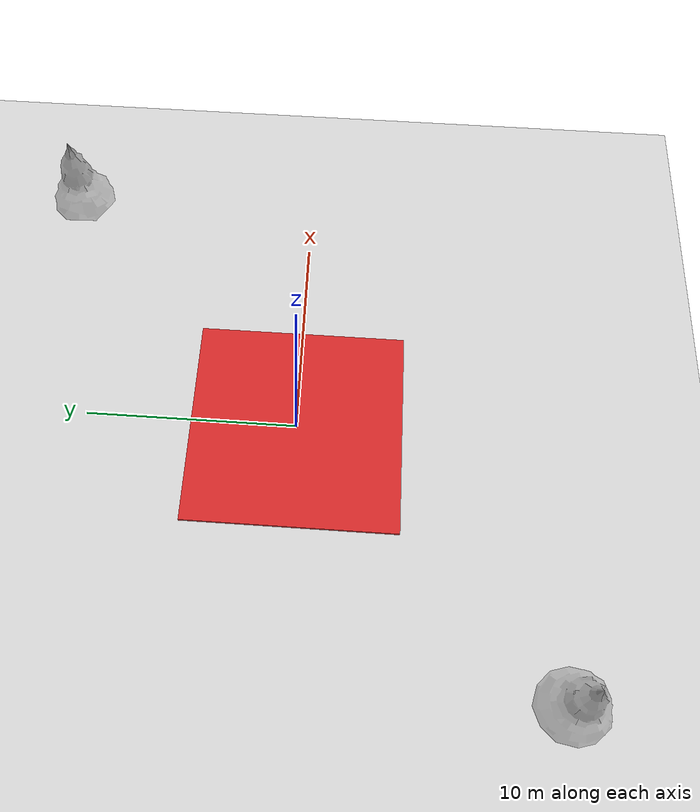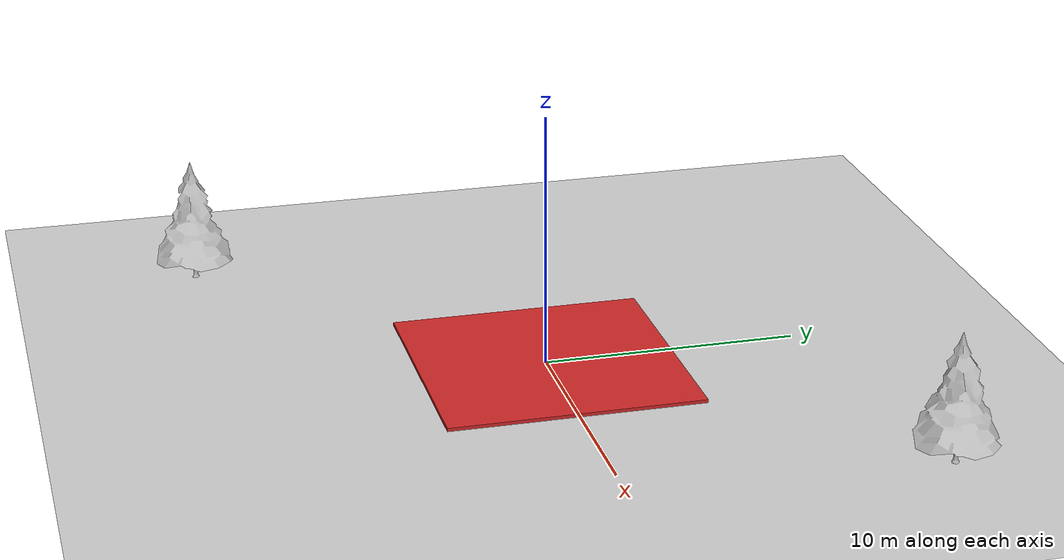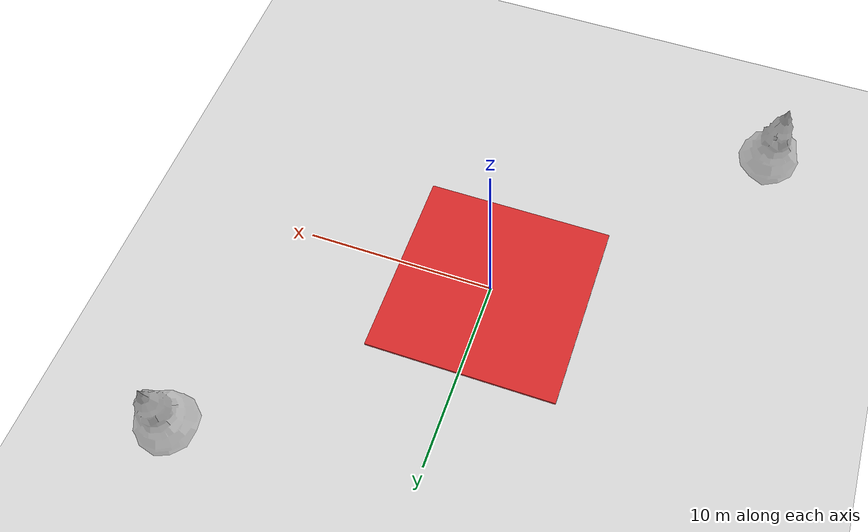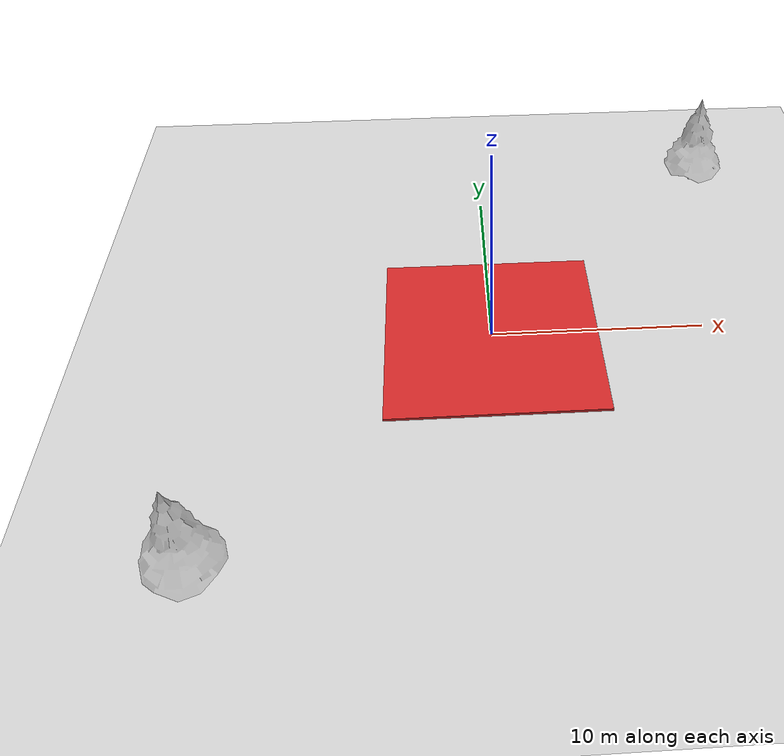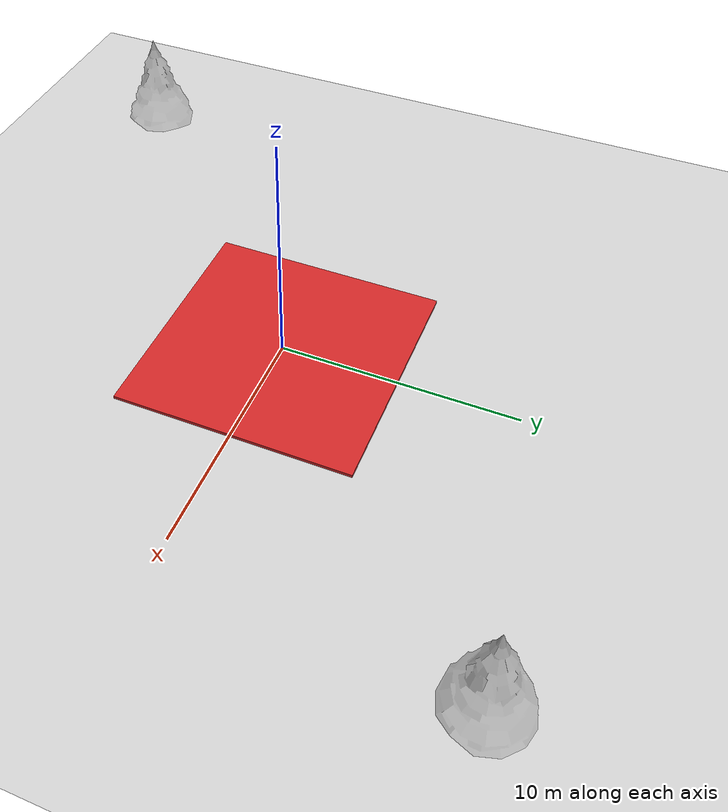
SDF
<?xml version="1.0" ?>
<sdf version="1.5">
	<world name="default">
		<!-- A global light source -->
		<include>
			<uri>model://sun</uri>
		</include>
		<!-- A ground plane -->
		<include>
			<uri>model://ground_plane</uri>
		</include>

		<include>
			<uri>model://pine_tree</uri>
			<static>false</static>
			<pose>12 12 0 0 0 0</pose>
		</include>

		<include>
			<uri>model://pine_tree</uri>
			<static>false</static>
			<pose>-12 -12 0 0 0 0</pose>
		</include>

		<include>
			<uri>model://dancefloor</uri>
			<static>false</static>
			<pose>0 0 0 0 0 0</pose>
		</include>

	</world>
</sdf>

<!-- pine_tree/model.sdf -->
<sdf version="1.6">
  <model name="pine_tree">
    <static>true</static>
    <link name="link">
      <collision name="collision">
        <geometry>
          <mesh>
            <uri>file://isr-testbed/pine_tree/meshes/pine_tree.dae</uri>
          </mesh>
        </geometry>
      </collision>
      <visual name="branch">
        <geometry>
          <mesh>
            <uri>file://isr-testbed/pine_tree/meshes/pine_tree.dae</uri>
            <submesh>
              <name>Branch</name>
            </submesh>
          </mesh>
        </geometry>
        <material>
          <script>
            <uri>file://isr-testbed/pine_tree/materials/scripts/</uri>
            <uri>file://isr-testbed/pine_tree/materials/textures/</uri>
            <name>PineTree/Branch</name>
          </script>
        </material>
      </visual>
      <visual name="bark">
        <geometry>
          <mesh>
            <uri>file://isr-testbed/pine_tree/meshes/pine_tree.dae</uri>
            <submesh>
              <name>Bark</name>
            </submesh>
          </mesh>
        </geometry>
        <material>
          <script>
            <uri>file://isr-testbed/pine_tree/materials/scripts/</uri>
            <uri>file://isr-testbed/pine_tree/materials/textures/</uri>
            <name>PineTree/Bark</name>
          </script>
        </material>
      </visual>
    </link>
  </model>
</sdf>

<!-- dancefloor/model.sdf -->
<sdf version="1.5">

	<model name="dancefloor">
		<static>true</static>
		<link name="link">
			<collision name="collision">
				<geometry>
					<box>
						<size>10 10 0.2</size>
					</box>
				</geometry>
				<surface>
					<friction>
						<ode>
							<mu>200</mu>
							<mu2>200</mu2>
						</ode>
					</friction>
				</surface>
			</collision>
			<visual name="visual">
				<geometry>
					<box>
						<size>10 10 0.2</size>
					</box>
				</geometry>
				<material>
          			<script>
            			<uri>file://media/materials/scripts/gazebo.material</uri>
            			<name>Gazebo/Red</name>
          			</script>
        		</material>
			</visual>
		</link>
	</model>
</sdf>
